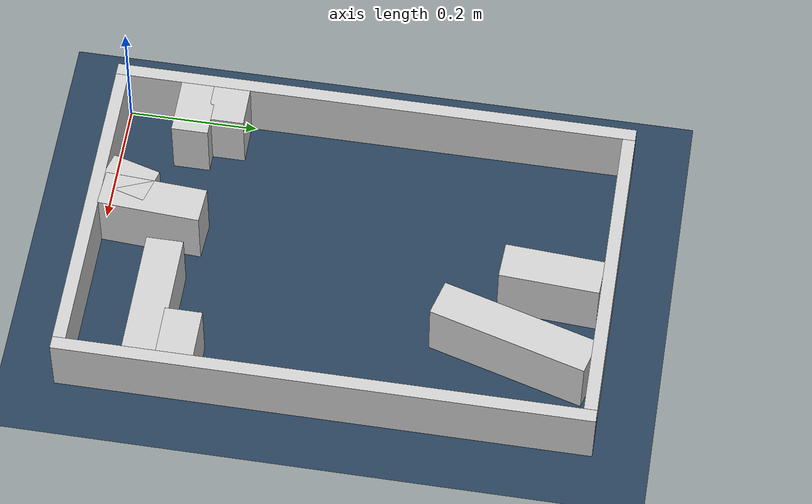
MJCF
<?xml version="1.0" ?>
<mujoco model="generated_real_template">
  <compiler angle="degree"/>
  <option timestep="0.002" integrator="implicitfast" iterations="100" cone="elliptic"/>
  <default>
    <geom density="1"/>
  </default>
  <asset>
    <texture builtin="gradient" height="3072" rgb1="0.3 0.5 0.7" rgb2="0 0 0" type="skybox" width="512"/>
    <texture builtin="checker" height="300" mark="edge" markrgb="0.8 0.8 0.8" name="groundplane" rgb1="0.2 0.3 0.4" rgb2="0.1 0.2 0.3" type="2d" width="300"/>
    <material name="groundplane" reflectance="0.2" texrepeat="5 5" texture="groundplane" texuniform="true"/>
  </asset>
  <worldbody>
    <light dir="0 0 -1" directional="true" pos="0 0 1.5"/>
    <geom name="floor" type="plane" condim="4" friction="0.5 0.005 0.001" material="groundplane" size="0 0 0.05"/>
    <body name="walls">
      <geom name="wall_boundary_left" type="box" condim="4" friction="1.0 0.005 0.0001" rgba="0.8 0.8 0.8 1" pos="-0.010000 0.387500 0.050000" euler="0 0 0.000000" size="0.010000 0.407500 0.050000"/>
      <geom name="wall_boundary_right" type="box" condim="4" friction="1.0 0.005 0.0001" rgba="0.8 0.8 0.8 1" pos="0.500000 0.387500 0.050000" euler="0 0 0.000000" size="0.010000 0.407500 0.050000"/>
      <geom name="wall_boundary_bottom" type="box" condim="4" friction="1.0 0.005 0.0001" rgba="0.8 0.8 0.8 1" pos="0.245000 -0.010000 0.050000" euler="0 0 0.000000" size="0.245000 0.010000 0.050000"/>
      <geom name="wall_boundary_top" type="box" condim="4" friction="1.0 0.005 0.0001" rgba="0.8 0.8 0.8 1" pos="0.245000 0.785000 0.050000" euler="0 0 0.000000" size="0.245000 0.010000 0.050000"/>
      <geom name="wall_inner_1_1" type="box" condim="4" friction="1.0 0.005 0.0001" rgba="0.8 0.8 0.8 1" pos="0.031533 0.164322 0.050000" euler="0 0 0.000000" size="0.031533 0.028500 0.050000"/>
      <geom name="wall_inner_1_2" type="box" condim="4" friction="1.0 0.005 0.0001" rgba="0.8 0.8 0.8 1" pos="0.451971 0.164322 0.050000" euler="0 0 0.000000" size="0.038029 0.028500 0.050000"/>
      <geom name="wall_inner_2_1" type="box" condim="4" friction="1.0 0.005 0.0001" rgba="0.8 0.8 0.8 1" pos="0.253898 0.698381 0.050000" euler="0 0 -93.227271" size="0.076740 0.028500 0.050000"/>
      <geom name="wall_inner_2_2" type="box" condim="4" friction="1.0 0.005 0.0001" rgba="0.8 0.8 0.8 1" pos="0.218988 0.079267 0.050000" euler="0 0 -93.227271" size="0.079393 0.028500 0.050000"/>
      <geom name="wall_inner_3_1" type="box" condim="4" friction="1.0 0.005 0.0001" rgba="0.8 0.8 0.8 1" pos="0.190454 0.037380 0.050000" euler="0 0 74.200635" size="0.038848 0.028500 0.050000"/>
      <geom name="wall_inner_3_2" type="box" condim="4" friction="1.0 0.005 0.0001" rgba="0.8 0.8 0.8 1" pos="0.365256 0.655144 0.050000" euler="0 0 74.200635" size="0.124561 0.028500 0.050000"/>
      <geom name="wall_inner_4_1" type="box" condim="4" friction="1.0 0.005 0.0001" rgba="0.8 0.8 0.8 1" pos="0.044842 0.113200 0.050000" euler="0 0 0.000000" size="0.044842 0.028500 0.050000"/>
      <geom name="wall_inner_4_2" type="box" condim="4" friction="1.0 0.005 0.0001" rgba="0.8 0.8 0.8 1" pos="0.391810 0.113200 0.050000" euler="0 0 0.000000" size="0.098190 0.028500 0.050000"/>
    </body>
  </worldbody>
</mujoco>
